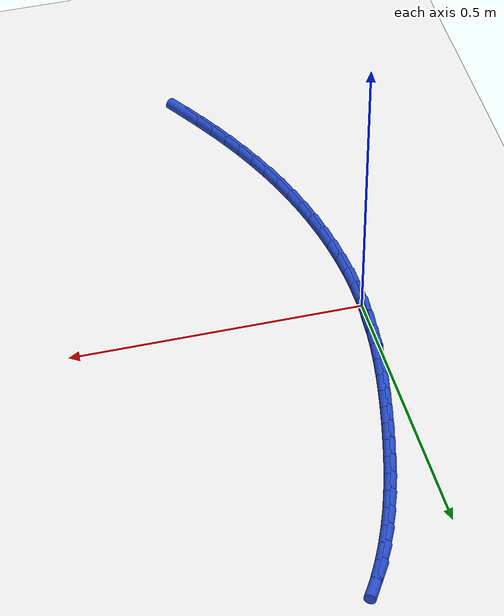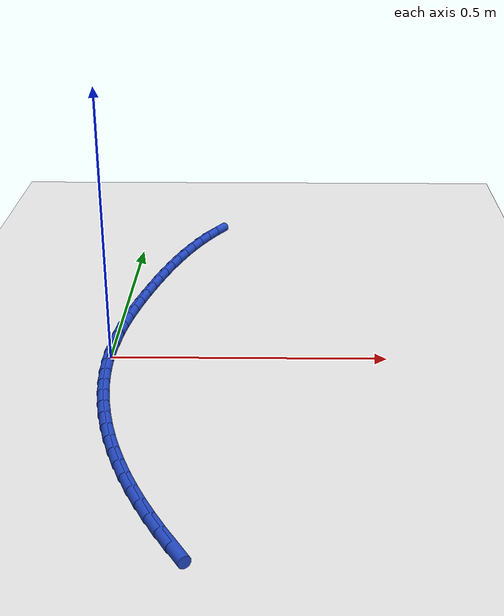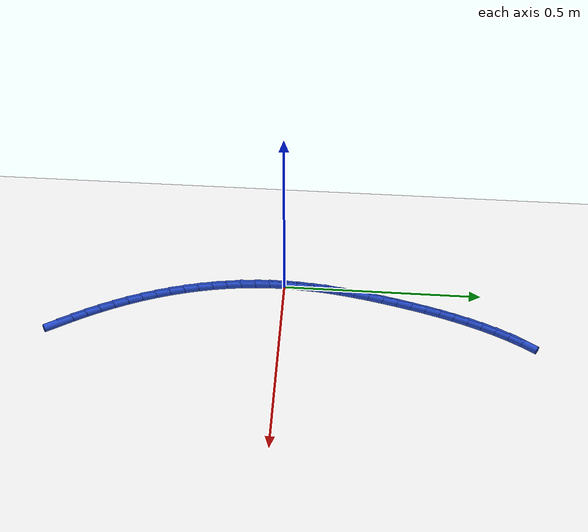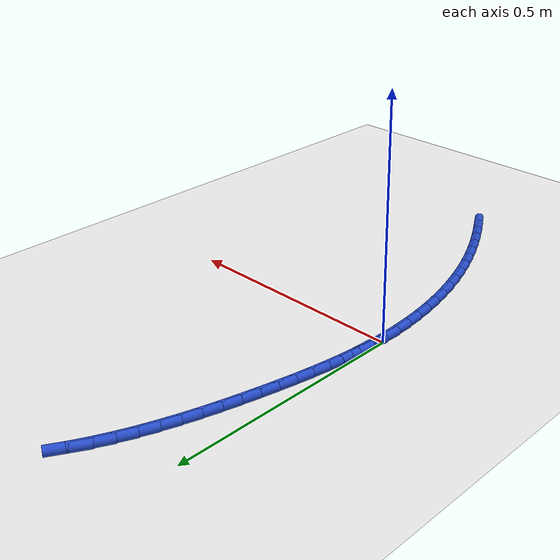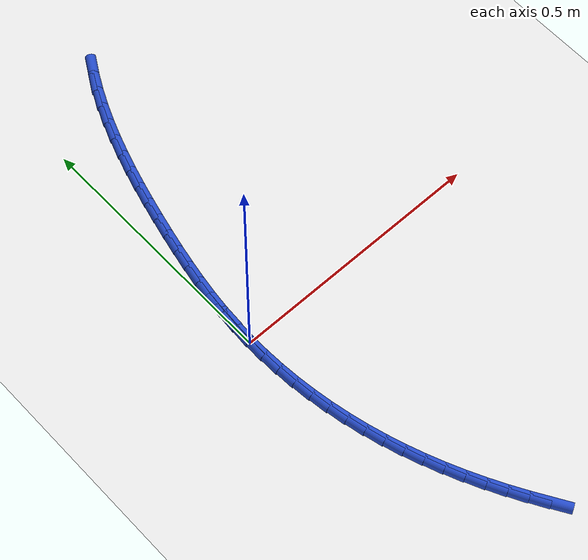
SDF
<sdf version="1.6">
 <world name="default">
  <model name="ground_plane">
   <static>1</static>
   <link name="link">
    <collision name="collision">
     <geometry><plane><normal>0 0 1</normal><size>100 100</size></plane></geometry>
     <surface><friction><ode><mu>100</mu><mu2>50</mu2></ode></friction></surface>
    </collision>
    <visual name="visual">
     <cast_shadows>0</cast_shadows>
     <geometry><plane><normal>0 0 1</normal><size>100 100</size></plane></geometry>
     <material>
      <script><uri>file://media/materials/scripts/gazebo.material</uri><name>Gazebo/WhiteGlow</name></script>
     </material>
    </visual>
   </link>
  </model>
  <model name="line">
   <link name="link_0">
    <pose>-8.673617379884035e-18 3.469446951953614e-17 0.01 0 1.57 1.5358566611218092</pose>
    <collision name="collision">
     <geometry><cylinder><radius>0.01</radius><length>0.08</length></cylinder></geometry>
    </collision>
    <visual name="visual">
     <material>
      <script><name>Gazebo/Blue</name><uri>file://media/materials/scripts/gazebo.material</uri></script>
     </material>
     <geometry><cylinder><radius>0.01</radius><length>0.08</length></cylinder></geometry>
    </visual>
   </link>
   <link name="link_1">
    <pose>0.0012643379825934707 0.03617159533238097 0.01 0 1.57 1.4971096954893166</pose>
    <collision name="collision">
     <geometry><cylinder><radius>0.01</radius><length>0.08</length></cylinder></geometry>
    </collision>
    <visual name="visual">
     <material>
      <script><name>Gazebo/Blue</name><uri>file://media/materials/scripts/gazebo.material</uri></script>
     </material>
     <geometry><cylinder><radius>0.01</radius><length>0.08</length></cylinder></geometry>
    </visual>
   </link>
   <link name="link_2">
    <pose>0.003926747639628221 0.07223769242623723 0.01 0 1.57 1.4620322199565978</pose>
    <collision name="collision">
     <geometry><cylinder><radius>0.01</radius><length>0.08</length></cylinder></geometry>
    </collision>
    <visual name="visual">
     <material>
      <script><name>Gazebo/Blue</name><uri>file://media/materials/scripts/gazebo.material</uri></script>
     </material>
     <geometry><cylinder><radius>0.01</radius><length>0.08</length></cylinder></geometry>
    </visual>
   </link>
   <link name="link_3">
    <pose>0.00785577732934662 0.10821945682339952 0.01 0 1.57 1.4307285916348285</pose>
    <collision name="collision">
     <geometry><cylinder><radius>0.01</radius><length>0.08</length></cylinder></geometry>
    </collision>
    <visual name="visual">
     <material>
      <script><name>Gazebo/Blue</name><uri>file://media/materials/scripts/gazebo.material</uri></script>
     </material>
     <geometry><cylinder><radius>0.01</radius><length>0.08</length></cylinder></geometry>
    </visual>
   </link>
   <link name="link_4">
    <pose>0.012919975409991043 0.14413805406569852 0.01 0 1.57 1.4032489761076152</pose>
    <collision name="collision">
     <geometry><cylinder><radius>0.01</radius><length>0.08</length></cylinder></geometry>
    </collision>
    <visual name="visual">
     <material>
      <script><name>Gazebo/Blue</name><uri>file://media/materials/scripts/gazebo.material</uri></script>
     </material>
     <geometry><cylinder><radius>0.01</radius><length>0.08</length></cylinder></geometry>
    </visual>
   </link>
   <link name="link_5">
    <pose>0.018987890239803868 0.18001464969496492 0.01 0 1.57 1.3796023103163129</pose>
    <collision name="collision">
     <geometry><cylinder><radius>0.01</radius><length>0.08</length></cylinder></geometry>
    </collision>
    <visual name="visual">
     <material>
      <script><name>Gazebo/Blue</name><uri>file://media/materials/scripts/gazebo.material</uri></script>
     </material>
     <geometry><cylinder><radius>0.01</radius><length>0.08</length></cylinder></geometry>
    </visual>
   </link>
   <link name="link_6">
    <pose>0.025928070177027463 0.2158704092530294 0.01 0 1.57 1.3597684366169516</pose>
    <collision name="collision">
     <geometry><cylinder><radius>0.01</radius><length>0.08</length></cylinder></geometry>
    </collision>
    <visual name="visual">
     <material>
      <script><name>Gazebo/Blue</name><uri>file://media/materials/scripts/gazebo.material</uri></script>
     </material>
     <geometry><cylinder><radius>0.01</radius><length>0.08</length></cylinder></geometry>
    </visual>
   </link>
   <link name="link_7">
    <pose>0.033609063579904216 0.2517264982817226 0.01 0 1.57 1.34370346270668</pose>
    <collision name="collision">
     <geometry><cylinder><radius>0.01</radius><length>0.08</length></cylinder></geometry>
    </collision>
    <visual name="visual">
     <material>
      <script><name>Gazebo/Blue</name><uri>file://media/materials/scripts/gazebo.material</uri></script>
     </material>
     <geometry><cylinder><radius>0.01</radius><length>0.08</length></cylinder></geometry>
    </visual>
   </link>
   <link name="link_8">
    <pose>0.04189959529199151 0.287603987735716 0.01 0 1.57 1.329492105155803</pose>
    <collision name="collision">
     <geometry><cylinder><radius>0.01</radius><length>0.08</length></cylinder></geometry>
    </collision>
    <visual name="visual">
     <material>
      <script><name>Gazebo/Blue</name><uri>file://media/materials/scripts/gazebo.material</uri></script>
     </material>
     <geometry><cylinder><radius>0.01</radius><length>0.08</length></cylinder></geometry>
    </visual>
   </link>
   <link name="link_9">
    <pose>0.0507311949192792 0.32349028840893146 0.01 0 1.57 1.3124633714556924</pose>
    <collision name="collision">
     <geometry><cylinder><radius>0.01</radius><length>0.08</length></cylinder></geometry>
    </collision>
    <visual name="visual">
     <material>
      <script><name>Gazebo/Blue</name><uri>file://media/materials/scripts/gazebo.material</uri></script>
     </material>
     <geometry><cylinder><radius>0.01</radius><length>0.08</length></cylinder></geometry>
    </visual>
   </link>
   <link name="link_10">
    <pose>0.060190701730452795 0.359289573009359 0.01 0 1.57 1.2918390897070708</pose>
    <collision name="collision">
     <geometry><cylinder><radius>0.01</radius><length>0.08</length></cylinder></geometry>
    </collision>
    <visual name="visual">
     <material>
      <script><name>Gazebo/Blue</name><uri>file://media/materials/scripts/gazebo.material</uri></script>
     </material>
     <geometry><cylinder><radius>0.01</radius><length>0.08</length></cylinder></geometry>
    </visual>
   </link>
   <link name="link_11">
    <pose>0.07038854391236883 0.39489337178370393 0.01 0 1.57 1.267513936303608</pose>
    <collision name="collision">
     <geometry><cylinder><radius>0.01</radius><length>0.08</length></cylinder></geometry>
    </collision>
    <visual name="visual">
     <material>
      <script><name>Gazebo/Blue</name><uri>file://media/materials/scripts/gazebo.material</uri></script>
     </material>
     <geometry><cylinder><radius>0.01</radius><length>0.08</length></cylinder></geometry>
    </visual>
   </link>
   <link name="link_12">
    <pose>0.08143514965188396 0.43019321497867197 0.01 0 1.57 1.2393606936795978</pose>
    <collision name="collision">
     <geometry><cylinder><radius>0.01</radius><length>0.08</length></cylinder></geometry>
    </collision>
    <visual name="visual">
     <material>
      <script><name>Gazebo/Blue</name><uri>file://media/materials/scripts/gazebo.material</uri></script>
     </material>
     <geometry><cylinder><radius>0.01</radius><length>0.08</length></cylinder></geometry>
    </visual>
   </link>
   <link name="link_13">
    <pose>0.09344094713585474 0.46508063284096857 0.01 0 1.57 1.2072390286842873</pose>
    <collision name="collision">
     <geometry><cylinder><radius>0.01</radius><length>0.08</length></cylinder></geometry>
    </collision>
    <visual name="visual">
     <material>
      <script><name>Gazebo/Blue</name><uri>file://media/materials/scripts/gazebo.material</uri></script>
     </material>
     <geometry><cylinder><radius>0.01</radius><length>0.08</length></cylinder></geometry>
    </visual>
   </link>
   <link name="link_14">
    <pose>0.1065163645511377 0.4994471556172989 0.01 0 1.57 1.1710069696980483</pose>
    <collision name="collision">
     <geometry><cylinder><radius>0.01</radius><length>0.08</length></cylinder></geometry>
    </collision>
    <visual name="visual">
     <material>
      <script><name>Gazebo/Blue</name><uri>file://media/materials/scripts/gazebo.material</uri></script>
     </material>
     <geometry><cylinder><radius>0.01</radius><length>0.08</length></cylinder></geometry>
    </visual>
   </link>
   <link name="link_15">
    <pose>0.12077183008458946 0.5331843135543685 0.01 0 1.57 1.1305358232662344</pose>
    <collision name="collision">
     <geometry><cylinder><radius>0.01</radius><length>0.08</length></cylinder></geometry>
    </collision>
    <visual name="visual">
     <material>
      <script><name>Gazebo/Blue</name><uri>file://media/materials/scripts/gazebo.material</uri></script>
     </material>
     <geometry><cylinder><radius>0.01</radius><length>0.08</length></cylinder></geometry>
    </visual>
   </link>
   <link name="link_16">
    <pose>0.13631777192306663 0.5661836368988831 0.01 0 1.57 1.0857290788391851</pose>
    <collision name="collision">
     <geometry><cylinder><radius>0.01</radius><length>0.08</length></cylinder></geometry>
    </collision>
    <visual name="visual">
     <material>
      <script><name>Gazebo/Blue</name><uri>file://media/materials/scripts/gazebo.material</uri></script>
     </material>
     <geometry><cylinder><radius>0.01</radius><length>0.08</length></cylinder></geometry>
    </visual>
   </link>
   <link name="link_17">
    <pose>0.1532646182534258 0.5983366558975481 0.01 0 1.57 1.036545389994959</pose>
    <collision name="collision">
     <geometry><cylinder><radius>0.01</radius><length>0.08</length></cylinder></geometry>
    </collision>
    <visual name="visual">
     <material>
      <script><name>Gazebo/Blue</name><uri>file://media/materials/scripts/gazebo.material</uri></script>
     </material>
     <geometry><cylinder><radius>0.01</radius><length>0.08</length></cylinder></geometry>
    </visual>
   </link>
   <link name="link_204">
    <pose>0.16503114578383804 -0.550808054977684 0.01 0 1.57 -1.0264420614247347</pose>
    <collision name="collision">
     <geometry><cylinder><radius>0.01</radius><length>0.08</length></cylinder></geometry>
    </collision>
    <visual name="visual">
     <material>
      <script><name>Gazebo/Blue</name><uri>file://media/materials/scripts/gazebo.material</uri></script>
     </material>
     <geometry><cylinder><radius>0.01</radius><length>0.08</length></cylinder></geometry>
    </visual>
   </link>
   <link name="link_205">
    <pose>0.1461193867438075 -0.5195677434939622 0.01 0 1.57 -1.0546923725488335</pose>
    <collision name="collision">
     <geometry><cylinder><radius>0.01</radius><length>0.08</length></cylinder></geometry>
    </collision>
    <visual name="visual">
     <material>
      <script><name>Gazebo/Blue</name><uri>file://media/materials/scripts/gazebo.material</uri></script>
     </material>
     <geometry><cylinder><radius>0.01</radius><length>0.08</length></cylinder></geometry>
    </visual>
   </link>
   <link name="link_206">
    <pose>0.12811804250150266 -0.4878417250681292 0.01 0 1.57 -1.0842466703299016</pose>
    <collision name="collision">
     <geometry><cylinder><radius>0.01</radius><length>0.08</length></cylinder></geometry>
    </collision>
    <visual name="visual">
     <material>
      <script><name>Gazebo/Blue</name><uri>file://media/materials/scripts/gazebo.material</uri></script>
     </material>
     <geometry><cylinder><radius>0.01</radius><length>0.08</length></cylinder></geometry>
    </visual>
   </link>
   <link name="link_207">
    <pose>0.11108076106157709 -0.4556329699142117 0.01 0 1.57 -1.115145446858591</pose>
    <collision name="collision">
     <geometry><cylinder><radius>0.01</radius><length>0.08</length></cylinder></geometry>
    </collision>
    <visual name="visual">
     <material>
      <script><name>Gazebo/Blue</name><uri>file://media/materials/scripts/gazebo.material</uri></script>
     </material>
     <geometry><cylinder><radius>0.01</radius><length>0.08</length></cylinder></geometry>
    </visual>
   </link>
   <link name="link_208">
    <pose>0.09506171673060988 -0.42294395706146265 0.01 0 1.57 -1.1474015326086069</pose>
    <collision name="collision">
     <geometry><cylinder><radius>0.01</radius><length>0.08</length></cylinder></geometry>
    </collision>
    <visual name="visual">
     <material>
      <script><name>Gazebo/Blue</name><uri>file://media/materials/scripts/gazebo.material</uri></script>
     </material>
     <geometry><cylinder><radius>0.01</radius><length>0.08</length></cylinder></geometry>
    </visual>
   </link>
   <link name="link_209">
    <pose>0.0801150838151788 -0.3897771655391327 0.01 0 1.57 -1.1810175652406054</pose>
    <collision name="collision">
     <geometry><cylinder><radius>0.01</radius><length>0.08</length></cylinder></geometry>
    </collision>
    <visual name="visual">
     <material>
      <script><name>Gazebo/Blue</name><uri>file://media/materials/scripts/gazebo.material</uri></script>
     </material>
     <geometry><cylinder><radius>0.01</radius><length>0.08</length></cylinder></geometry>
    </visual>
   </link>
   <link name="link_210">
    <pose>0.06629503662186209 -0.3561350743764733 0.01 0 1.57 -1.215984100857703</pose>
    <collision name="collision">
     <geometry><cylinder><radius>0.01</radius><length>0.08</length></cylinder></geometry>
    </collision>
    <visual name="visual">
     <material>
      <script><name>Gazebo/Blue</name><uri>file://media/materials/scripts/gazebo.material</uri></script>
     </material>
     <geometry><cylinder><radius>0.01</radius><length>0.08</length></cylinder></geometry>
    </visual>
   </link>
   <link name="link_211">
    <pose>0.05365574945723793 -0.3220201626027356 0.01 0 1.57 -1.252277738416785</pose>
    <collision name="collision">
     <geometry><cylinder><radius>0.01</radius><length>0.08</length></cylinder></geometry>
    </collision>
    <visual name="visual">
     <material>
      <script><name>Gazebo/Blue</name><uri>file://media/materials/scripts/gazebo.material</uri></script>
     </material>
     <geometry><cylinder><radius>0.01</radius><length>0.08</length></cylinder></geometry>
    </visual>
   </link>
   <link name="link_212">
    <pose>0.042251396627884304 -0.2874349092471702 0.01 0 1.57 -1.2897417381925036</pose>
    <collision name="collision">
     <geometry><cylinder><radius>0.01</radius><length>0.08</length></cylinder></geometry>
    </collision>
    <visual name="visual">
     <material>
      <script><name>Gazebo/Blue</name><uri>file://media/materials/scripts/gazebo.material</uri></script>
     </material>
     <geometry><cylinder><radius>0.01</radius><length>0.08</length></cylinder></geometry>
    </visual>
   </link>
   <link name="link_213">
    <pose>0.03213375082777461 -0.25238894534534134 0.01 0 1.57 -1.3276108263972772</pose>
    <collision name="collision">
     <geometry><cylinder><radius>0.01</radius><length>0.08</length></cylinder></geometry>
    </collision>
    <visual name="visual">
     <material>
      <script><name>Gazebo/Blue</name><uri>file://media/materials/scripts/gazebo.material</uri></script>
     </material>
     <geometry><cylinder><radius>0.01</radius><length>0.08</length></cylinder></geometry>
    </visual>
   </link>
   <link name="link_214">
    <pose>0.023338772510533762 -0.21693899081072215 0.01 0 1.57 -1.3656967840346566</pose>
    <collision name="collision">
     <geometry><cylinder><radius>0.01</radius><length>0.08</length></cylinder></geometry>
    </collision>
    <visual name="visual">
     <material>
      <script><name>Gazebo/Blue</name><uri>file://media/materials/scripts/gazebo.material</uri></script>
     </material>
     <geometry><cylinder><radius>0.01</radius><length>0.08</length></cylinder></geometry>
    </visual>
   </link>
   <link name="link_215">
    <pose>0.015896027910771007 -0.18116080755159217 0.01 0 1.57 -1.404139495921634</pose>
    <collision name="collision">
     <geometry><cylinder><radius>0.01</radius><length>0.08</length></cylinder></geometry>
    </collision>
    <visual name="visual">
     <material>
      <script><name>Gazebo/Blue</name><uri>file://media/materials/scripts/gazebo.material</uri></script>
     </material>
     <geometry><cylinder><radius>0.01</radius><length>0.08</length></cylinder></geometry>
    </visual>
   </link>
   <link name="link_216">
    <pose>0.009835065294939686 -0.14513021098542847 0.01 0 1.57 -1.4430779732285086</pose>
    <collision name="collision">
     <geometry><cylinder><radius>0.01</radius><length>0.08</length></cylinder></geometry>
    </collision>
    <visual name="visual">
     <material>
      <script><name>Gazebo/Blue</name><uri>file://media/materials/scripts/gazebo.material</uri></script>
     </material>
     <geometry><cylinder><radius>0.01</radius><length>0.08</length></cylinder></geometry>
    </visual>
   </link>
   <link name="link_217">
    <pose>0.00518543292949356 -0.10892301652971029 0.01 0 1.57 -1.4826493339275606</pose>
    <collision name="collision">
     <geometry><cylinder><radius>0.01</radius><length>0.08</length></cylinder></geometry>
    </collision>
    <visual name="visual">
     <material>
      <script><name>Gazebo/Blue</name><uri>file://media/materials/scripts/gazebo.material</uri></script>
     </material>
     <geometry><cylinder><radius>0.01</radius><length>0.08</length></cylinder></geometry>
    </visual>
   </link>
   <link name="link_218">
    <pose>0.001976679080885925 -0.07261503960191452 0.01 0 1.57 -1.522988406455083</pose>
    <collision name="collision">
     <geometry><cylinder><radius>0.01</radius><length>0.08</length></cylinder></geometry>
    </collision>
    <visual name="visual">
     <material>
      <script><name>Gazebo/Blue</name><uri>file://media/materials/scripts/gazebo.material</uri></script>
     </material>
     <geometry><cylinder><radius>0.01</radius><length>0.08</length></cylinder></geometry>
    </visual>
   </link>
   <link name="link_219">
    <pose>0.0002383520155702411 -0.036282095619518784 0.01 0 1.57 -1.5642270098157285</pose>
    <collision name="collision">
     <geometry><cylinder><radius>0.01</radius><length>0.08</length></cylinder></geometry>
    </collision>
    <visual name="visual">
     <material>
      <script><name>Gazebo/Blue</name><uri>file://media/materials/scripts/gazebo.material</uri></script>
     </material>
     <geometry><cylinder><radius>0.01</radius><length>0.08</length></cylinder></geometry>
    </visual>
   </link>
   <link name="link_220">
    <pose>-1.214306433183765e-17 1.3877787807814457e-16 0.01 0 1.57 1.5350998140653358</pose>
    <collision name="collision">
     <geometry><cylinder><radius>0.01</radius><length>0.08</length></cylinder></geometry>
    </collision>
    <visual name="visual">
     <material>
      <script><name>Gazebo/Blue</name><uri>file://media/materials/scripts/gazebo.material</uri></script>
     </material>
     <geometry><cylinder><radius>0.01</radius><length>0.08</length></cylinder></geometry>
    </visual>
   </link>
   <link name="link_221">
    <pose>0.0012911713006285895 0.03615543183916192 0.01 0 1.57 1.4916847663229116</pose>
    <collision name="collision">
     <geometry><cylinder><radius>0.01</radius><length>0.08</length></cylinder></geometry>
    </collision>
    <visual name="visual">
     <material>
      <script><name>Gazebo/Blue</name><uri>file://media/materials/scripts/gazebo.material</uri></script>
     </material>
     <geometry><cylinder><radius>0.01</radius><length>0.08</length></cylinder></geometry>
    </visual>
   </link>
   <link name="link_222">
    <pose>0.0041414141839096336 0.07210838448049248 0.01 0 1.57 1.5134261662764137</pose>
    <collision name="collision">
     <geometry><cylinder><radius>0.01</radius><length>0.08</length></cylinder></geometry>
    </collision>
    <visual name="visual">
     <material>
      <script><name>Gazebo/Blue</name><uri>file://media/materials/scripts/gazebo.material</uri></script>
     </material>
     <geometry><cylinder><radius>0.01</radius><length>0.08</length></cylinder></geometry>
    </visual>
   </link>
  </model>
 </world>
</sdf>
